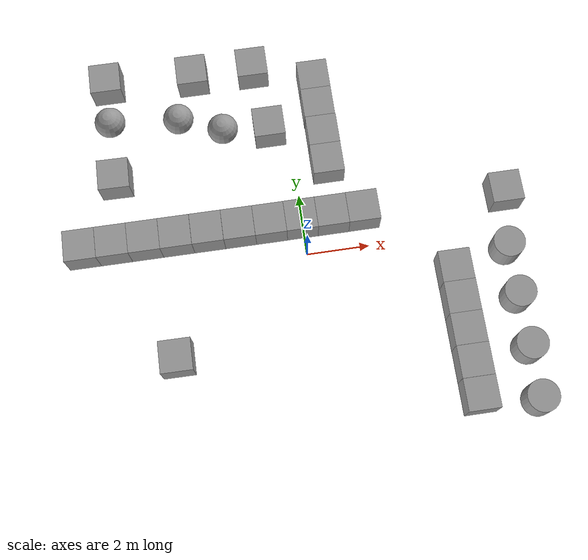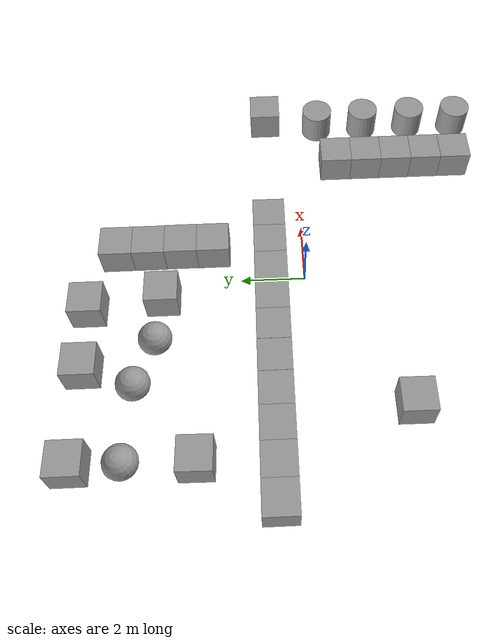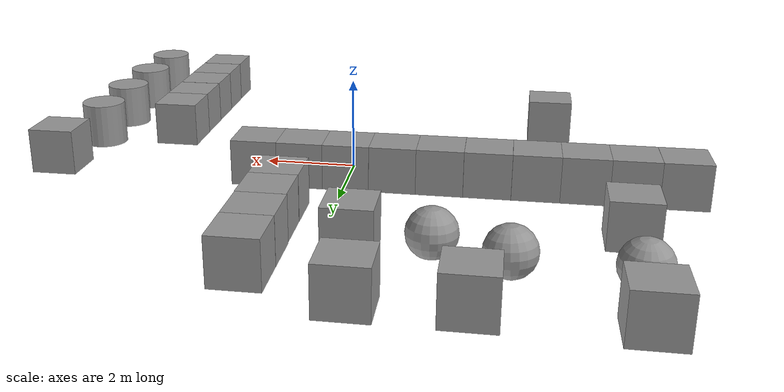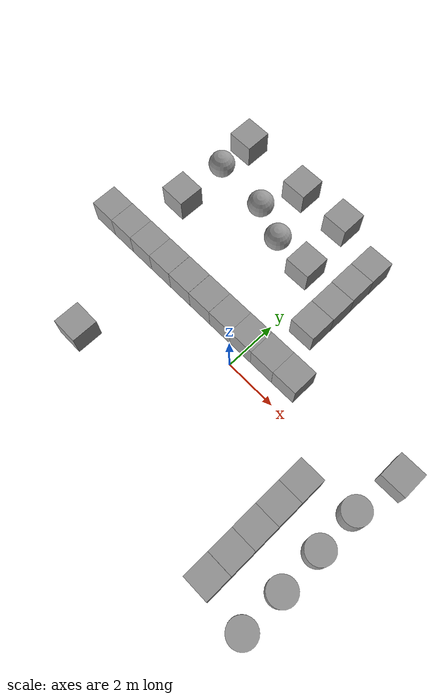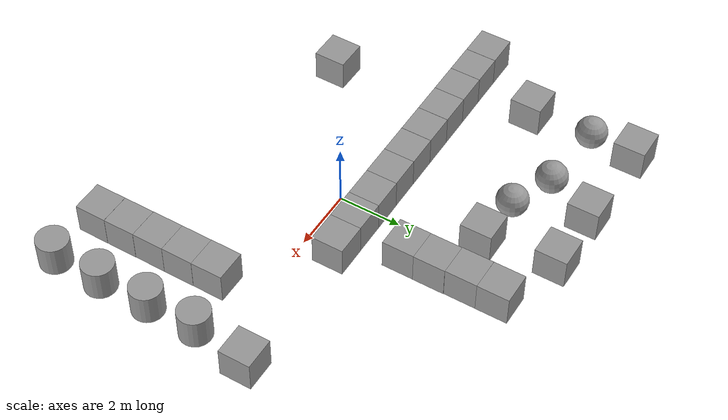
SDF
<sdf version="1.7">
 <world name="default">
  <gravity>0 0 -9.8</gravity>
  <magnetic_field>6e-06 2.3e-05 -4.2e-05</magnetic_field>
  <atmosphere type="adiabatic"/>
  <physics name="default_physics" default="0" type="ode">
   <max_step_size>0.001</max_step_size>
   <real_time_factor>1</real_time_factor>
   <real_time_update_rate>1000</real_time_update_rate>
  </physics>
  <scene>
   <ambient>0.4 0.4 0.4 1</ambient>
   <background>0.7 0.7 0.7 1</background>
   <shadows>1</shadows>
   <grid>0</grid>
   <origin_visual>0</origin_visual>
  </scene>
  <spherical_coordinates>
   <surface_model>EARTH_WGS84</surface_model>
   <latitude_deg>0</latitude_deg>
   <longitude_deg>0</longitude_deg>
   <elevation>0</elevation>
   <heading_deg>0</heading_deg>
  </spherical_coordinates>
  <light name="RetailShop_CeilingLight_001" type="point">
   <pose>2.77442 -3.62815 3.17847 0 -0 0</pose>
   <diffuse>0.2 0.2 0.2 1</diffuse>
   <specular>0.1 0.1 0.1 1</specular>
   <attenuation>
    <range>20</range>
    <constant>0.32</constant>
    <linear>0.01</linear>
    <quadratic>0.03</quadratic>
   </attenuation>
   <cast_shadows>0</cast_shadows>
   <direction>0 0 -1</direction>
   <spot><inner_angle>0</inner_angle><outer_angle>0</outer_angle><falloff>0</falloff></spot>
  </light>
  <light name="RetailShop_CeilingLight_002" type="point">
   <pose>5.38399 -5.38371 3.17847 0 -0 0</pose>
   <diffuse>0.2 0.2 0.2 1</diffuse>
   <specular>0.1 0.1 0.1 1</specular>
   <attenuation>
    <range>20</range>
    <constant>0.32</constant>
    <linear>0.01</linear>
    <quadratic>0.03</quadratic>
   </attenuation>
   <cast_shadows>0</cast_shadows>
   <direction>0 0 -1</direction>
   <spot><inner_angle>0</inner_angle><outer_angle>0</outer_angle><falloff>0</falloff></spot>
  </light>
  <light name="RetailShop_CeilingLight_003" type="point">
   <pose>5.38399 0.04192 3.17847 0 -0 0</pose>
   <diffuse>0.2 0.2 0.2 1</diffuse>
   <specular>0.1 0.1 0.1 1</specular>
   <attenuation>
    <range>20</range>
    <constant>0.32</constant>
    <linear>0.01</linear>
    <quadratic>0.03</quadratic>
   </attenuation>
   <cast_shadows>0</cast_shadows>
   <direction>0 0 -1</direction>
   <spot><inner_angle>0</inner_angle><outer_angle>0</outer_angle><falloff>0</falloff></spot>
  </light>
  <light name="RetailShop_CeilingLight_004" type="point">
   <pose>-3.21067 -5.38371 3.17847 0 -0 0</pose>
   <diffuse>0.2 0.2 0.2 1</diffuse>
   <specular>0.1 0.1 0.1 1</specular>
   <attenuation>
    <range>20</range>
    <constant>0.32</constant>
    <linear>0.01</linear>
    <quadratic>0.03</quadratic>
   </attenuation>
   <cast_shadows>0</cast_shadows>
   <direction>0 0 -1</direction>
   <spot><inner_angle>0</inner_angle><outer_angle>0</outer_angle><falloff>0</falloff></spot>
  </light>
  <light name="RetailShop_CeilingLight_005" type="point">
   <pose>-3.271 2.68593 3.17847 0 -0 0</pose>
   <diffuse>0.2 0.2 0.2 1</diffuse>
   <specular>0.1 0.1 0.1 1</specular>
   <attenuation>
    <range>20</range>
    <constant>0.32</constant>
    <linear>0.01</linear>
    <quadratic>0.03</quadratic>
   </attenuation>
   <cast_shadows>0</cast_shadows>
   <direction>0 0 -1</direction>
   <spot><inner_angle>0</inner_angle><outer_angle>0</outer_angle><falloff>0</falloff></spot>
  </light>
  <light name="RetailShop_CeilingLight_006" type="point">
   <pose>1.4932 4.69237 3.17847 0 -0 0</pose>
   <diffuse>0.2 0.2 0.2 1</diffuse>
   <specular>0.1 0.1 0.1 1</specular>
   <attenuation>
    <range>20</range>
    <constant>0.32</constant>
    <linear>0.01</linear>
    <quadratic>0.03</quadratic>
   </attenuation>
   <cast_shadows>0</cast_shadows>
   <direction>0 0 -1</direction>
   <spot><inner_angle>0</inner_angle><outer_angle>0</outer_angle><falloff>0</falloff></spot>
  </light>
  <audio><device>default</device></audio>
  <light name="user_directional_light_0" type="directional">
   <pose>1.49712 -12.0596 1 0 -0 0</pose>
   <diffuse>0.2 0.2 0.2 1</diffuse>
   <specular>0.1 0.1 0.1 1</specular>
   <direction>0.1 0.1 -0.9</direction>
   <attenuation>
    <range>20</range>
    <constant>0.5</constant>
    <linear>0.01</linear>
    <quadratic>0.001</quadratic>
   </attenuation>
   <spot><inner_angle>0</inner_angle><outer_angle>0</outer_angle><falloff>0</falloff></spot>
  </light>
  <model name="unit_sphere_0">
   <pose>-2.17255 4.52625 0.513382 0.002254 0.001114 1e-06</pose>
   <link name="link">
    <inertial>
     <mass>1</mass>
     <inertia><ixx>0.1</ixx><ixy>0</ixy><ixz>0</ixz><iyy>0.1</iyy><iyz>0</iyz><izz>0.1</izz></inertia>
    </inertial>
    <collision name="collision"><geometry><sphere><radius>0.5</radius></sphere></geometry></collision>
    <visual name="visual">
     <geometry><sphere><radius>0.5</radius></sphere></geometry>
     <material>
      <script><name>Gazebo/Grey</name><uri>file://media/materials/scripts/gazebo.material</uri></script>
     </material>
    </visual>
   </link>
  </model>
  <model name="unit_box">
   <pose>-2.96245 6.59694 0.513382 -0 -0 -2.1e-05</pose>
   <link name="link">
    <inertial>
     <mass>1</mass>
     <inertia>
      <ixx>0.166667</ixx>
      <ixy>0</ixy>
      <ixz>0</ixz>
      <iyy>0.166667</iyy>
      <iyz>0</iyz>
      <izz>0.166667</izz>
     </inertia>
    </inertial>
    <collision name="collision"><geometry><box><size>1 1 1</size></box></geometry></collision>
    <visual name="visual">
     <geometry><box><size>1 1 1</size></box></geometry>
     <material>
      <script><name>Gazebo/Grey</name><uri>file://media/materials/scripts/gazebo.material</uri></script>
     </material>
    </visual>
   </link>
  </model>
  <model name="unit_sphere_2">
   <pose>-3.58601 5.08504 0.513382 0.06034 0.06407 0.001934</pose>
   <link name="link">
    <inertial>
     <mass>1</mass>
     <inertia><ixx>0.1</ixx><ixy>0</ixy><ixz>0</ixz><iyy>0.1</iyy><iyz>0</iyz><izz>0.1</izz></inertia>
    </inertial>
    <collision name="collision"><geometry><sphere><radius>0.5</radius></sphere></geometry></collision>
    <visual name="visual">
     <geometry><sphere><radius>0.5</radius></sphere></geometry>
     <material>
      <script><name>Gazebo/Grey</name><uri>file://media/materials/scripts/gazebo.material</uri></script>
     </material>
    </visual>
   </link>
  </model>
  <model name="unit_box_1">
   <pose>1.92967 1.06073 0.513382 0 -0 0.001246</pose>
   <link name="link">
    <inertial>
     <mass>1</mass>
     <inertia>
      <ixx>0.166667</ixx>
      <ixy>0</ixy>
      <ixz>0</ixz>
      <iyy>0.166667</iyy>
      <iyz>0</iyz>
      <izz>0.166667</izz>
     </inertia>
    </inertial>
    <collision name="collision"><geometry><box><size>1 1 1</size></box></geometry></collision>
    <visual name="visual">
     <geometry><box><size>1 1 1</size></box></geometry>
     <material>
      <script><name>Gazebo/Grey</name><uri>file://media/materials/scripts/gazebo.material</uri></script>
     </material>
    </visual>
   </link>
  </model>
  <model name="unit_box_2">
   <pose>0.929673 1.05599 0.513382 0 -0 0.00125</pose>
   <link name="link">
    <inertial>
     <mass>1</mass>
     <inertia>
      <ixx>0.166667</ixx>
      <ixy>0</ixy>
      <ixz>0</ixz>
      <iyy>0.166667</iyy>
      <iyz>0</iyz>
      <izz>0.166667</izz>
     </inertia>
    </inertial>
    <collision name="collision"><geometry><box><size>1 1 1</size></box></geometry></collision>
    <visual name="visual">
     <geometry><box><size>1 1 1</size></box></geometry>
     <material>
      <script><name>Gazebo/Grey</name><uri>file://media/materials/scripts/gazebo.material</uri></script>
     </material>
    </visual>
   </link>
  </model>
  <model name="unit_box_3">
   <pose>-0.657175 4.37556 0.513382 0 -0 0.003273</pose>
   <link name="link">
    <inertial>
     <mass>1</mass>
     <inertia>
      <ixx>0.166667</ixx>
      <ixy>0</ixy>
      <ixz>0</ixz>
      <iyy>0.166667</iyy>
      <iyz>0</iyz>
      <izz>0.166667</izz>
     </inertia>
    </inertial>
    <collision name="collision"><geometry><box><size>1 1 1</size></box></geometry></collision>
    <visual name="visual">
     <geometry><box><size>1 1 1</size></box></geometry>
     <material>
      <script><name>Gazebo/Grey</name><uri>file://media/materials/scripts/gazebo.material</uri></script>
     </material>
    </visual>
   </link>
  </model>
  <model name="unit_box_4">
   <pose>1.04532 2.84008 0.513382 0 -0 0.002886</pose>
   <link name="link">
    <inertial>
     <mass>1</mass>
     <inertia>
      <ixx>0.166667</ixx>
      <ixy>0</ixy>
      <ixz>0</ixz>
      <iyy>0.166667</iyy>
      <iyz>0</iyz>
      <izz>0.166667</izz>
     </inertia>
    </inertial>
    <collision name="collision"><geometry><box><size>1 1 1</size></box></geometry></collision>
    <visual name="visual">
     <geometry><box><size>1 1 1</size></box></geometry>
     <material>
      <script><name>Gazebo/Grey</name><uri>file://media/materials/scripts/gazebo.material</uri></script>
     </material>
    </visual>
   </link>
  </model>
  <model name="unit_box_5">
   <pose>1.04615 3.84011 0.513382 0 -0 0.002834</pose>
   <link name="link">
    <inertial>
     <mass>1</mass>
     <inertia>
      <ixx>0.166667</ixx>
      <ixy>0</ixy>
      <ixz>0</ixz>
      <iyy>0.166667</iyy>
      <iyz>0</iyz>
      <izz>0.166667</izz>
     </inertia>
    </inertial>
    <collision name="collision"><geometry><box><size>1 1 1</size></box></geometry></collision>
    <visual name="visual">
     <geometry><box><size>1 1 1</size></box></geometry>
     <material>
      <script><name>Gazebo/Grey</name><uri>file://media/materials/scripts/gazebo.material</uri></script>
     </material>
    </visual>
   </link>
  </model>
  <model name="unit_box_6">
   <pose>1.03253 4.84033 0.513382 0 -0 0.002332</pose>
   <link name="link">
    <inertial>
     <mass>1</mass>
     <inertia>
      <ixx>0.166667</ixx>
      <ixy>0</ixy>
      <ixz>0</ixz>
      <iyy>0.166667</iyy>
      <iyz>0</iyz>
      <izz>0.166667</izz>
     </inertia>
    </inertial>
    <collision name="collision"><geometry><box><size>1 1 1</size></box></geometry></collision>
    <visual name="visual">
     <geometry><box><size>1 1 1</size></box></geometry>
     <material>
      <script><name>Gazebo/Grey</name><uri>file://media/materials/scripts/gazebo.material</uri></script>
     </material>
    </visual>
   </link>
  </model>
  <model name="unit_box_7">
   <pose>1.03157 5.84053 0.513382 0 -0 0.002233</pose>
   <link name="link">
    <inertial>
     <mass>1</mass>
     <inertia>
      <ixx>0.166667</ixx>
      <ixy>0</ixy>
      <ixz>0</ixz>
      <iyy>0.166667</iyy>
      <iyz>0</iyz>
      <izz>0.166667</izz>
     </inertia>
    </inertial>
    <collision name="collision"><geometry><box><size>1 1 1</size></box></geometry></collision>
    <visual name="visual">
     <geometry><box><size>1 1 1</size></box></geometry>
     <material>
      <script><name>Gazebo/Grey</name><uri>file://media/materials/scripts/gazebo.material</uri></script>
     </material>
    </visual>
   </link>
  </model>
  <model name="unit_box_8">
   <pose>-7.0754 1.04665 0.513382 0 0 -5e-06</pose>
   <link name="link">
    <inertial>
     <mass>1</mass>
     <inertia>
      <ixx>0.166667</ixx>
      <ixy>0</ixy>
      <ixz>0</ixz>
      <iyy>0.166667</iyy>
      <iyz>0</iyz>
      <izz>0.166667</izz>
     </inertia>
    </inertial>
    <collision name="collision"><geometry><box><size>1 1 1</size></box></geometry></collision>
    <visual name="visual">
     <geometry><box><size>1 1 1</size></box></geometry>
     <material>
      <script><name>Gazebo/Grey</name><uri>file://media/materials/scripts/gazebo.material</uri></script>
     </material>
    </visual>
   </link>
  </model>
  <model name="unit_box_9">
   <pose>-6.07505 1.04673 0.513382 -0 -0 -2e-06</pose>
   <link name="link">
    <inertial>
     <mass>1</mass>
     <inertia>
      <ixx>0.166667</ixx>
      <ixy>0</ixy>
      <ixz>0</ixz>
      <iyy>0.166667</iyy>
      <iyz>0</iyz>
      <izz>0.166667</izz>
     </inertia>
    </inertial>
    <collision name="collision"><geometry><box><size>1 1 1</size></box></geometry></collision>
    <visual name="visual">
     <geometry><box><size>1 1 1</size></box></geometry>
     <material>
      <script><name>Gazebo/Grey</name><uri>file://media/materials/scripts/gazebo.material</uri></script>
     </material>
    </visual>
   </link>
  </model>
  <model name="unit_box_10">
   <pose>-5.07491 1.0478 0.513382 -0 -0 -1e-06</pose>
   <link name="link">
    <inertial>
     <mass>1</mass>
     <inertia>
      <ixx>0.166667</ixx>
      <ixy>0</ixy>
      <ixz>0</ixz>
      <iyy>0.166667</iyy>
      <iyz>0</iyz>
      <izz>0.166667</izz>
     </inertia>
    </inertial>
    <collision name="collision"><geometry><box><size>1 1 1</size></box></geometry></collision>
    <visual name="visual">
     <geometry><box><size>1 1 1</size></box></geometry>
     <material>
      <script><name>Gazebo/Grey</name><uri>file://media/materials/scripts/gazebo.material</uri></script>
     </material>
    </visual>
   </link>
  </model>
  <model name="unit_box_11">
   <pose>-4.07473 1.04863 0.513382 -0 -0 -0</pose>
   <link name="link">
    <inertial>
     <mass>1</mass>
     <inertia>
      <ixx>0.166667</ixx>
      <ixy>0</ixy>
      <ixz>0</ixz>
      <iyy>0.166667</iyy>
      <iyz>0</iyz>
      <izz>0.166667</izz>
     </inertia>
    </inertial>
    <collision name="collision"><geometry><box><size>1 1 1</size></box></geometry></collision>
    <visual name="visual">
     <geometry><box><size>1 1 1</size></box></geometry>
     <material>
      <script><name>Gazebo/Grey</name><uri>file://media/materials/scripts/gazebo.material</uri></script>
     </material>
    </visual>
   </link>
  </model>
  <model name="unit_box_12">
   <pose>-3.07286 1.04892 0.513382 -0 -0 -0</pose>
   <link name="link">
    <inertial>
     <mass>1</mass>
     <inertia>
      <ixx>0.166667</ixx>
      <ixy>0</ixy>
      <ixz>0</ixz>
      <iyy>0.166667</iyy>
      <iyz>0</iyz>
      <izz>0.166667</izz>
     </inertia>
    </inertial>
    <collision name="collision"><geometry><box><size>1 1 1</size></box></geometry></collision>
    <visual name="visual">
     <geometry><box><size>1 1 1</size></box></geometry>
     <material>
      <script><name>Gazebo/Grey</name><uri>file://media/materials/scripts/gazebo.material</uri></script>
     </material>
    </visual>
   </link>
  </model>
  <model name="unit_box_13">
   <pose>-2.071 1.0496 0.513382 -0 -0 -0</pose>
   <link name="link">
    <inertial>
     <mass>1</mass>
     <inertia>
      <ixx>0.166667</ixx>
      <ixy>0</ixy>
      <ixz>0</ixz>
      <iyy>0.166667</iyy>
      <iyz>0</iyz>
      <izz>0.166667</izz>
     </inertia>
    </inertial>
    <collision name="collision"><geometry><box><size>1 1 1</size></box></geometry></collision>
    <visual name="visual">
     <geometry><box><size>1 1 1</size></box></geometry>
     <material>
      <script><name>Gazebo/Grey</name><uri>file://media/materials/scripts/gazebo.material</uri></script>
     </material>
    </visual>
   </link>
  </model>
  <model name="unit_box_14">
   <pose>-1.07032 1.05015 0.513382 0 -0 0.001251</pose>
   <link name="link">
    <inertial>
     <mass>1</mass>
     <inertia>
      <ixx>0.166667</ixx>
      <ixy>0</ixy>
      <ixz>0</ixz>
      <iyy>0.166667</iyy>
      <iyz>0</iyz>
      <izz>0.166667</izz>
     </inertia>
    </inertial>
    <collision name="collision"><geometry><box><size>1 1 1</size></box></geometry></collision>
    <visual name="visual">
     <geometry><box><size>1 1 1</size></box></geometry>
     <material>
      <script><name>Gazebo/Grey</name><uri>file://media/materials/scripts/gazebo.material</uri></script>
     </material>
    </visual>
   </link>
  </model>
  <model name="unit_box_15">
   <pose>-0.070329 1.05525 0.513382 0 -0 0.001251</pose>
   <link name="link">
    <inertial>
     <mass>1</mass>
     <inertia>
      <ixx>0.166667</ixx>
      <ixy>0</ixy>
      <ixz>0</ixz>
      <iyy>0.166667</iyy>
      <iyz>0</iyz>
      <izz>0.166667</izz>
     </inertia>
    </inertial>
    <collision name="collision"><geometry><box><size>1 1 1</size></box></geometry></collision>
    <visual name="visual">
     <geometry><box><size>1 1 1</size></box></geometry>
     <material>
      <script><name>Gazebo/Grey</name><uri>file://media/materials/scripts/gazebo.material</uri></script>
     </material>
    </visual>
   </link>
  </model>
  <model name="unit_box_16">
   <pose>-0.944875 6.59851 0.513382 -0 -0 -0</pose>
   <link name="link">
    <inertial>
     <mass>1</mass>
     <inertia>
      <ixx>0.166667</ixx>
      <ixy>0</ixy>
      <ixz>0</ixz>
      <iyy>0.166667</iyy>
      <iyz>0</iyz>
      <izz>0.166667</izz>
     </inertia>
    </inertial>
    <collision name="collision"><geometry><box><size>1 1 1</size></box></geometry></collision>
    <visual name="visual">
     <geometry><box><size>1 1 1</size></box></geometry>
     <material>
      <script><name>Gazebo/Grey</name><uri>file://media/materials/scripts/gazebo.material</uri></script>
     </material>
    </visual>
   </link>
  </model>
  <model name="unit_box_17">
   <pose>-5.82032 6.69437 0.513382 0 -0 0</pose>
   <link name="link">
    <inertial>
     <mass>1</mass>
     <inertia>
      <ixx>0.166667</ixx>
      <ixy>0</ixy>
      <ixz>0</ixz>
      <iyy>0.166667</iyy>
      <iyz>0</iyz>
      <izz>0.166667</izz>
     </inertia>
    </inertial>
    <collision name="collision"><geometry><box><size>1 1 1</size></box></geometry></collision>
    <visual name="visual">
     <geometry><box><size>1 1 1</size></box></geometry>
     <material>
      <script><name>Gazebo/Grey</name><uri>file://media/materials/scripts/gazebo.material</uri></script>
     </material>
    </visual>
   </link>
  </model>
  <model name="unit_box_18">
   <pose>6.54988 1.05946 0.513382 0 -0 0.003031</pose>
   <link name="link">
    <inertial>
     <mass>1</mass>
     <inertia>
      <ixx>0.166667</ixx>
      <ixy>0</ixy>
      <ixz>0</ixz>
      <iyy>0.166667</iyy>
      <iyz>0</iyz>
      <izz>0.166667</izz>
     </inertia>
    </inertial>
    <collision name="collision"><geometry><box><size>1 1 1</size></box></geometry></collision>
    <visual name="visual">
     <geometry><box><size>1 1 1</size></box></geometry>
     <material>
      <script><name>Gazebo/Grey</name><uri>file://media/materials/scripts/gazebo.material</uri></script>
     </material>
    </visual>
   </link>
  </model>
  <model name="unit_box_19">
   <pose>-5.82807 3.26515 0.513375 -2e-06 4e-06 -0.014437</pose>
   <link name="link">
    <inertial>
     <mass>1</mass>
     <inertia>
      <ixx>0.166667</ixx>
      <ixy>0</ixy>
      <ixz>0</ixz>
      <iyy>0.166667</iyy>
      <iyz>0</iyz>
      <izz>0.166667</izz>
     </inertia>
    </inertial>
    <collision name="collision"><geometry><box><size>1 1 1</size></box></geometry></collision>
    <visual name="visual">
     <geometry><box><size>1 1 1</size></box></geometry>
     <material>
      <script><name>Gazebo/Grey</name><uri>file://media/materials/scripts/gazebo.material</uri></script>
     </material>
    </visual>
   </link>
  </model>
  <model name="unit_sphere">
   <pose>-5.83683 5.27674 0.513382 -0.041255 0.000155 0.004123</pose>
   <link name="link">
    <inertial>
     <mass>1</mass>
     <inertia><ixx>0.1</ixx><ixy>0</ixy><ixz>0</ixz><iyy>0.1</iyy><iyz>0</iyz><izz>0.1</izz></inertia>
    </inertial>
    <collision name="collision"><geometry><sphere><radius>0.5</radius></sphere></geometry></collision>
    <visual name="visual">
     <geometry><sphere><radius>0.5</radius></sphere></geometry>
     <material>
      <script><name>Gazebo/Grey</name><uri>file://media/materials/scripts/gazebo.material</uri></script>
     </material>
    </visual>
   </link>
  </model>
  <model name="unit_box_0">
   <pose>4.4764 -1.28148 0.513372 0 -0 -0.000192</pose>
   <link name="link">
    <inertial>
     <mass>1</mass>
     <inertia>
      <ixx>0.166667</ixx>
      <ixy>0</ixy>
      <ixz>0</ixz>
      <iyy>0.166667</iyy>
      <iyz>0</iyz>
      <izz>0.166667</izz>
     </inertia>
    </inertial>
    <collision name="collision"><geometry><box><size>1 1 1</size></box></geometry></collision>
    <visual name="visual">
     <geometry><box><size>1 1 1</size></box></geometry>
     <material>
      <script><name>Gazebo/Grey</name><uri>file://media/materials/scripts/gazebo.material</uri></script>
     </material>
    </visual>
   </link>
  </model>
  <model name="unit_box_20">
   <pose>4.48013 -2.28148 0.512363 -0 -0 -0.000192</pose>
   <link name="link">
    <inertial>
     <mass>1</mass>
     <inertia>
      <ixx>0.166667</ixx>
      <ixy>0</ixy>
      <ixz>0</ixz>
      <iyy>0.166667</iyy>
      <iyz>0</iyz>
      <izz>0.166667</izz>
     </inertia>
    </inertial>
    <collision name="collision"><geometry><box><size>1 1 1</size></box></geometry></collision>
    <visual name="visual">
     <geometry><box><size>1 1 1</size></box></geometry>
     <material>
      <script><name>Gazebo/Grey</name><uri>file://media/materials/scripts/gazebo.material</uri></script>
     </material>
    </visual>
   </link>
  </model>
  <model name="unit_box_21">
   <pose>4.48146 -3.28157 0.513382 -0 -0 -0.00017</pose>
   <link name="link">
    <inertial>
     <mass>1</mass>
     <inertia>
      <ixx>0.166667</ixx>
      <ixy>0</ixy>
      <ixz>0</ixz>
      <iyy>0.166667</iyy>
      <iyz>0</iyz>
      <izz>0.166667</izz>
     </inertia>
    </inertial>
    <collision name="collision"><geometry><box><size>1 1 1</size></box></geometry></collision>
    <visual name="visual">
     <geometry><box><size>1 1 1</size></box></geometry>
     <material>
      <script><name>Gazebo/Grey</name><uri>file://media/materials/scripts/gazebo.material</uri></script>
     </material>
    </visual>
   </link>
  </model>
  <model name="unit_box_22">
   <pose>4.48512 -4.28191 0.513382 -0 -0 -0</pose>
   <link name="link">
    <inertial>
     <mass>1</mass>
     <inertia>
      <ixx>0.166667</ixx>
      <ixy>0</ixy>
      <ixz>0</ixz>
      <iyy>0.166667</iyy>
      <iyz>0</iyz>
      <izz>0.166667</izz>
     </inertia>
    </inertial>
    <collision name="collision"><geometry><box><size>1 1 1</size></box></geometry></collision>
    <visual name="visual">
     <geometry><box><size>1 1 1</size></box></geometry>
     <material>
      <script><name>Gazebo/Grey</name><uri>file://media/materials/scripts/gazebo.material</uri></script>
     </material>
    </visual>
   </link>
  </model>
  <model name="unit_box_23">
   <pose>4.48648 -5.28393 0.513373 0 -0 0</pose>
   <link name="link">
    <inertial>
     <mass>1</mass>
     <inertia>
      <ixx>0.166667</ixx>
      <ixy>0</ixy>
      <ixz>0</ixz>
      <iyy>0.166667</iyy>
      <iyz>0</iyz>
      <izz>0.166667</izz>
     </inertia>
    </inertial>
    <collision name="collision"><geometry><box><size>1 1 1</size></box></geometry></collision>
    <visual name="visual">
     <geometry><box><size>1 1 1</size></box></geometry>
     <material>
      <script><name>Gazebo/Grey</name><uri>file://media/materials/scripts/gazebo.material</uri></script>
     </material>
    </visual>
   </link>
  </model>
  <model name="unit_cylinder">
   <pose>6.27415 -0.768911 0.513374 -3e-06 1e-06 7.2e-05</pose>
   <link name="link">
    <inertial>
     <mass>1</mass>
     <inertia><ixx>0.145833</ixx><ixy>0</ixy><ixz>0</ixz><iyy>0.145833</iyy><iyz>0</iyz><izz>0.125</izz></inertia>
    </inertial>
    <collision name="collision">
     <geometry><cylinder><radius>0.5</radius><length>1</length></cylinder></geometry>
    </collision>
    <visual name="visual">
     <geometry><cylinder><radius>0.5</radius><length>1</length></cylinder></geometry>
     <material>
      <script><name>Gazebo/Grey</name><uri>file://media/materials/scripts/gazebo.material</uri></script>
     </material>
    </visual>
   </link>
  </model>
  <model name="unit_cylinder_0">
   <pose>6.28624 -2.37719 0.513382 0 -0 3.1e-05</pose>
   <link name="link">
    <inertial>
     <mass>1</mass>
     <inertia><ixx>0.145833</ixx><ixy>0</ixy><ixz>0</ixz><iyy>0.145833</iyy><iyz>0</iyz><izz>0.125</izz></inertia>
    </inertial>
    <collision name="collision">
     <geometry><cylinder><radius>0.5</radius><length>1</length></cylinder></geometry>
    </collision>
    <visual name="visual">
     <geometry><cylinder><radius>0.5</radius><length>1</length></cylinder></geometry>
     <material>
      <script><name>Gazebo/Grey</name><uri>file://media/materials/scripts/gazebo.material</uri></script>
     </material>
    </visual>
   </link>
  </model>
  <model name="unit_cylinder_1">
   <pose>6.30296 -4.01241 0.513382 -0 -0 -7.7e-05</pose>
   <link name="link">
    <inertial>
     <mass>1</mass>
     <inertia><ixx>0.145833</ixx><ixy>0</ixy><ixz>0</ixz><iyy>0.145833</iyy><iyz>0</iyz><izz>0.125</izz></inertia>
    </inertial>
    <collision name="collision">
     <geometry><cylinder><radius>0.5</radius><length>1</length></cylinder></geometry>
    </collision>
    <visual name="visual">
     <geometry><cylinder><radius>0.5</radius><length>1</length></cylinder></geometry>
     <material>
      <script><name>Gazebo/Grey</name><uri>file://media/materials/scripts/gazebo.material</uri></script>
     </material>
    </visual>
   </link>
  </model>
  <model name="unit_cylinder_2">
   <pose>6.28066 -5.62038 0.513372 0 -0 0.000169</pose>
   <link name="link">
    <inertial>
     <mass>1</mass>
     <inertia><ixx>0.145833</ixx><ixy>0</ixy><ixz>0</ixz><iyy>0.145833</iyy><iyz>0</iyz><izz>0.125</izz></inertia>
    </inertial>
    <collision name="collision">
     <geometry><cylinder><radius>0.5</radius><length>1</length></cylinder></geometry>
    </collision>
    <visual name="visual">
     <geometry><cylinder><radius>0.5</radius><length>1</length></cylinder></geometry>
     <material>
      <script><name>Gazebo/Grey</name><uri>file://media/materials/scripts/gazebo.material</uri></script>
     </material>
    </visual>
   </link>
  </model>
  <model name="unit_box_24">
   <pose>-4.44404 -2.85734 0.513382 -0 -0 -0.006671</pose>
   <link name="link">
    <inertial>
     <mass>1</mass>
     <inertia>
      <ixx>0.166667</ixx>
      <ixy>0</ixy>
      <ixz>0</ixz>
      <iyy>0.166667</iyy>
      <iyz>0</iyz>
      <izz>0.166667</izz>
     </inertia>
    </inertial>
    <collision name="collision"><geometry><box><size>1 1 1</size></box></geometry></collision>
    <visual name="visual">
     <geometry><box><size>1 1 1</size></box></geometry>
     <material>
      <script><name>Gazebo/Grey</name><uri>file://media/materials/scripts/gazebo.material</uri></script>
     </material>
    </visual>
   </link>
  </model>
 </world>
</sdf>
